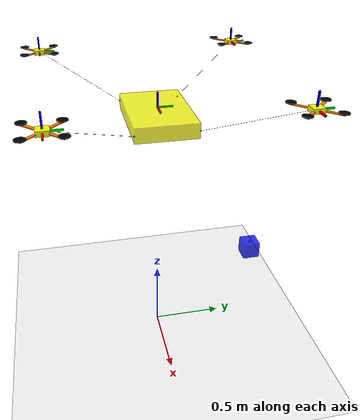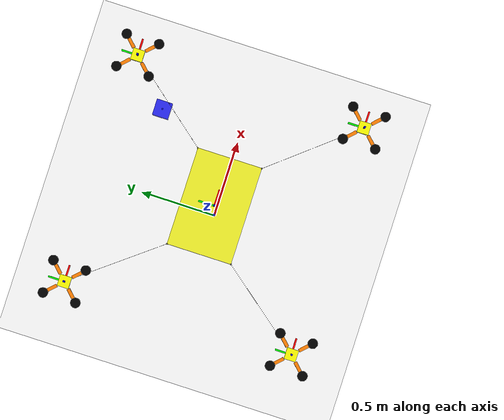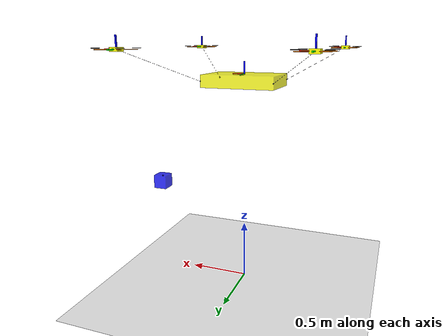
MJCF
<mujoco model="MuJoCo Model">
  <!--Compiler Options-->
  <compiler angle="radian"/>
  <option timestep="0.01" gravity="0 0 -9.81" density="1.225" viscosity="1.8e-05" integrator="RK4" jacobian="sparse">
    <flag energy="enable" contact="enable"/>
  </option>

<extension>
  <!-- Other plugins … (no configs on these if you don't need them) -->
  <plugin plugin="MujocoRosUtils::ClockPublisher"/>
  <plugin plugin="MujocoRosUtils::PosePublisher"/>
  <plugin plugin="MujocoRosUtils::ImagePublisher"/>
  <plugin plugin="MujocoRosUtils::ExternalForce"/>
  <plugin plugin="MujocoRosUtils::SensorPublisher"/>
  <plugin plugin="MujocoRosUtils::WrenchToActuators"/>
  <plugin plugin="MujocoRosUtils::OdometryPublisher"/>
</extension>

  <asset>
  <texture name="texchecker" type="2d" builtin="checker" width="512" height="512"
           rgb1="0.8 0.8 0.8" rgb2="0.2 0.2 0.2" />
  <material name="matchecker" texture="texchecker" texrepeat="4 4"
            reflectance="0.2" shininess="0.5" specular="0.3" />
  </asset>

  <worldbody>
    <light pos="0 0 1.5" dir="0 0 -1" directional="true"/>
    <geom name="floor" type="plane" size="20 20 0.1" material="matchecker"
      rgba="1 1 1 1" friction="1.0 0.005 0.0001" condim="3"/>

      <!--Quadrotor 0 -->
    <body name="drone_0" pos="-0.7 -0.7 2" euler="0 0 0">
      <joint name="drone_0" type="free" damping="0.001" armature="0" pos="0 0 0"/>

      <!-- Core: bright yellow for visibility -->
      <geom name="core" type="box" pos="0 0 0" quat="1. 0. 0. 0" size="0.035 0.035 0.015"
            rgba="1.0 1.0 0.0 1.0" mass=".84" friction="1.0 0.005 0.0001"/>

      <!-- Arms: bright orange -->
      <geom name="a00" type="box" pos=".071 0.071 0.0" size="0.05 0.01 0.0025"
            quat=".924 0.0 0.0 0.383" rgba="1.0 0.5 0.0 1.0" mass=".025"/>

      <geom name="a10" type="box" pos=".071 -0.071 0.0" size="0.05 0.01 0.0025"
            quat=".383 0.0 0.0 0.924" rgba="1.0 0.5 0.0 1.0" mass=".025"/>

      <geom name="a20" type="box" pos="-0.071 -0.071 0.0" size="0.05 0.01 0.0025"
            quat="-.383 0.0 0.0 0.924" rgba="1.0 0.5 0.0 1.0" mass=".025"/>

      <geom name="a30" type="box" pos="-.071 0.071 0.0" size="0.05 0.01 0.0025"
            quat=".924 0.0 0.0 -0.383" rgba="1.0 0.5 0.0 1.0" mass=".025"/>

      <!-- Thrusters: black for contrast -->
      <geom name="thruster00" type="cylinder" pos="0.1 0.1 0.01" size="0.03 0.0025"
            quat="1.0 0.0 0.0 0." rgba="0.0 0.0 0.0 1.0" mass=".015"/>
      <geom name="thruster10" type="cylinder" pos="0.1 -0.1 0.01" size="0.03 0.0025"
            quat="1.0 0.0 0.0 0." rgba="0.0 0.0 0.0 1.0" mass=".015"/>
      <geom name="thruster20" type="cylinder" pos="-0.1 -0.1 0.01" size="0.03 0.0025"
            quat="1.0 0.0 0.0 0." rgba="0.0 0.0 0.0 1.0" mass=".015"/>
      <geom name="thruster30" type="cylinder" pos="-0.1 0.1 0.01" size="0.03 0.0025"
            quat="1.0 0.0 0.0 0." rgba="0.0 0.0 0.0 1.0" mass=".015"/>

      <!-- Axes remain unchanged -->
      <site name="qcX" type="box" pos="0.05 0.0 0.0" size="0.05 0.005 0.005"
            quat="1.0 0.0 0.0 0." rgba="1 0 0 1"/>
      <site name="qcY" type="box" pos="0.0 0.05 0.0" size="0.05 0.005 0.005"
            quat="0.707 0.0 0.0 0.707" rgba="0 1 0 1"/>
      <site name="qcZ" type="box" pos="0.0 0.0 0.05" size="0.05 0.005 0.005"
            quat="-0.707 0.0 0.707 0." rgba="0 0 1 1"/>

      <!-- Actuator sites: bright cyan (unchanged) -->
      <site name="thrust" type="box" pos="0 0 0" size="0.035 0.035 0.015" quat="1.0 0.0 0.0 0." rgba="0 1 1 1"/>
      <site name="rateX" type="box" pos="0 0 0" quat="1. 0. 0. 0." size="0.035 0.035 0.015" rgba="0 1 1 1"/>
      <site name="rateY" type="box" pos="0 0 0" quat="1. 0. 0. 0." size="0.035 0.035 0.015" rgba="0 1 1 1"/>
      <site name="rateZ" type="box" pos="0 0 0" quat="1. 0. 0. 0." size="0.035 0.035 0.015" rgba="0 1 1 1"/>
      <site name="imu" pos="0 0 0"/>

      <site name="payload_point_drone_0" pos="0.0 0.0 -0.0"/>

      <camera name="camera_0" pos="0.035 0 -0.015" euler="0 0 -1.57"/>
    </body>

      <!--Quadrotor 1 -->
    <body name="drone_1" pos="-0.7 0.7 2" euler="0 0 0">
      <joint name="drone_1" type="free" damping="0.001" armature="0" pos="0 0 0"/>

      <!-- Core: bright yellow for visibility -->
      <geom name="core_1" type="box" pos="0 0 0" quat="1. 0. 0. 0" size="0.035 0.035 0.015"
            rgba="1.0 1.0 0.0 1.0" mass=".84" friction="1.0 0.005 0.0001"/>

      <!-- Arms: bright orange -->
      <geom name="a01" type="box" pos=".071 0.071 0.0" size="0.05 0.01 0.0025"
            quat=".924 0.0 0.0 0.383" rgba="1.0 0.5 0.0 1.0" mass=".025"/>

      <geom name="a11" type="box" pos=".071 -0.071 0.0" size="0.05 0.01 0.0025"
            quat=".383 0.0 0.0 0.924" rgba="1.0 0.5 0.0 1.0" mass=".025"/>

      <geom name="a21" type="box" pos="-0.071 -0.071 0.0" size="0.05 0.01 0.0025"
            quat="-.383 0.0 0.0 0.924" rgba="1.0 0.5 0.0 1.0" mass=".025"/>

      <geom name="a31" type="box" pos="-.071 0.071 0.0" size="0.05 0.01 0.0025"
            quat=".924 0.0 0.0 -0.383" rgba="1.0 0.5 0.0 1.0" mass=".025"/>

      <!-- Thrusters: black for contrast -->
      <geom name="thruster01" type="cylinder" pos="0.1 0.1 0.01" size="0.03 0.0025"
            quat="1.0 0.0 0.0 0." rgba="0.0 0.0 0.0 1.0" mass=".015"/>
      <geom name="thruster11" type="cylinder" pos="0.1 -0.1 0.01" size="0.03 0.0025"
            quat="1.0 0.0 0.0 0." rgba="0.0 0.0 0.0 1.0" mass=".015"/>
      <geom name="thruster21" type="cylinder" pos="-0.1 -0.1 0.01" size="0.03 0.0025"
            quat="1.0 0.0 0.0 0." rgba="0.0 0.0 0.0 1.0" mass=".015"/>
      <geom name="thruster31" type="cylinder" pos="-0.1 0.1 0.01" size="0.03 0.0025"
            quat="1.0 0.0 0.0 0." rgba="0.0 0.0 0.0 1.0" mass=".015"/>

      <!-- Axes remain unchanged -->
      <site name="qcX1" type="box" pos="0.05 0.0 0.0" size="0.05 0.005 0.005"
            quat="1.0 0.0 0.0 0." rgba="1 0 0 1"/>
      <site name="qcY1" type="box" pos="0.0 0.05 0.0" size="0.05 0.005 0.005"
            quat="0.707 0.0 0.0 0.707" rgba="0 1 0 1"/>
      <site name="qcZ1" type="box" pos="0.0 0.0 0.05" size="0.05 0.005 0.005"
            quat="-0.707 0.0 0.707 0." rgba="0 0 1 1"/>

      <!-- Actuator sites: bright cyan (unchanged) -->
      <site name="thrust1" type="box" pos="0 0 0" size="0.035 0.035 0.015" quat="1.0 0.0 0.0 0." rgba="0 1 1 1"/>
      <site name="rateX1" type="box" pos="0 0 0" quat="1. 0. 0. 0." size="0.035 0.035 0.015" rgba="0 1 1 1"/>
      <site name="rateY1" type="box" pos="0 0 0" quat="1. 0. 0. 0." size="0.035 0.035 0.015" rgba="0 1 1 1"/>
      <site name="rateZ1" type="box" pos="0 0 0" quat="1. 0. 0. 0." size="0.035 0.035 0.015" rgba="0 1 1 1"/>
      <site name="imu1" pos="0 0 0"/>

      <site name="payload_point_drone_1" pos="0.0 0.0 -0.0"/>

      <camera name="camera_1" pos="0.035 0 -0.015" euler="0 0 -1.57"/>
    </body>

     <!--Quadrotor 2 -->
    <body name="drone_2" pos="0.7 -0.7 2" euler="0 0 0">
      <joint name="drone_2" type="free" damping="0.001" armature="0" pos="0 0 0"/>

      <!-- Core: bright yellow for visibility -->
      <geom name="core_2" type="box" pos="0 0 0" quat="1. 0. 0. 0" size="0.035 0.035 0.015"
            rgba="1.0 1.0 0.0 1.0" mass=".84" friction="1.0 0.005 0.0001"/>

      <!-- Arms: bright orange -->
      <geom name="a02" type="box" pos=".071 0.071 0.0" size="0.05 0.01 0.0025"
            quat=".924 0.0 0.0 0.383" rgba="1.0 0.5 0.0 1.0" mass=".025"/>

      <geom name="a12" type="box" pos=".071 -0.071 0.0" size="0.05 0.01 0.0025"
            quat=".383 0.0 0.0 0.924" rgba="1.0 0.5 0.0 1.0" mass=".025"/>

      <geom name="a22" type="box" pos="-0.071 -0.071 0.0" size="0.05 0.01 0.0025"
            quat="-.383 0.0 0.0 0.924" rgba="1.0 0.5 0.0 1.0" mass=".025"/>

      <geom name="a32" type="box" pos="-.071 0.071 0.0" size="0.05 0.01 0.0025"
            quat=".924 0.0 0.0 -0.383" rgba="1.0 0.5 0.0 1.0" mass=".025"/>

      <!-- Thrusters: black for contrast -->
      <geom name="thruster02" type="cylinder" pos="0.1 0.1 0.01" size="0.03 0.0025"
            quat="1.0 0.0 0.0 0." rgba="0.0 0.0 0.0 1.0" mass=".015"/>
      <geom name="thruster12" type="cylinder" pos="0.1 -0.1 0.01" size="0.03 0.0025"
            quat="1.0 0.0 0.0 0." rgba="0.0 0.0 0.0 1.0" mass=".015"/>
      <geom name="thruster22" type="cylinder" pos="-0.1 -0.1 0.01" size="0.03 0.0025"
            quat="1.0 0.0 0.0 0." rgba="0.0 0.0 0.0 1.0" mass=".015"/>
      <geom name="thruster32" type="cylinder" pos="-0.1 0.1 0.01" size="0.03 0.0025"
            quat="1.0 0.0 0.0 0." rgba="0.0 0.0 0.0 1.0" mass=".015"/>

      <!-- Axes remain unchanged -->
      <site name="qcX2" type="box" pos="0.05 0.0 0.0" size="0.05 0.005 0.005"
            quat="1.0 0.0 0.0 0." rgba="1 0 0 1"/>
      <site name="qcY2" type="box" pos="0.0 0.05 0.0" size="0.05 0.005 0.005"
            quat="0.707 0.0 0.0 0.707" rgba="0 1 0 1"/>
      <site name="qcZ2" type="box" pos="0.0 0.0 0.05" size="0.05 0.005 0.005"
            quat="-0.707 0.0 0.707 0." rgba="0 0 1 1"/>

      <!-- Actuator sites: bright cyan (unchanged) -->
      <site name="thrust2" type="box" pos="0 0 0" size="0.035 0.035 0.015" quat="1.0 0.0 0.0 0." rgba="0 1 1 1"/>
      <site name="rateX2" type="box" pos="0 0 0" quat="1. 0. 0. 0." size="0.035 0.035 0.015" rgba="0 1 1 1"/>
      <site name="rateY2" type="box" pos="0 0 0" quat="1. 0. 0. 0." size="0.035 0.035 0.015" rgba="0 1 1 1"/>
      <site name="rateZ2" type="box" pos="0 0 0" quat="1. 0. 0. 0." size="0.035 0.035 0.015" rgba="0 1 1 1"/>
      <site name="imu2" pos="0 0 0"/>

      <site name="payload_point_drone_2" pos="0.0 0.0 -0.0"/>
    </body>

     <!--Quadrotor 3 -->
    <body name="drone_3" pos="0.7 0.7 2" euler="0 0 0">
      <joint name="drone_3" type="free" damping="0.001" armature="0" pos="0 0 0"/>

      <!-- Core: bright yellow for visibility -->
      <geom name="core_3" type="box" pos="0 0 0" quat="1. 0. 0. 0" size="0.035 0.035 0.015"
            rgba="1.0 1.0 0.0 1.0" mass=".84" friction="1.0 0.005 0.0001"/>

      <!-- Arms: bright orange -->
      <geom name="a03" type="box" pos=".071 0.071 0.0" size="0.05 0.01 0.0025"
            quat=".924 0.0 0.0 0.383" rgba="1.0 0.5 0.0 1.0" mass=".025"/>

      <geom name="a13" type="box" pos=".071 -0.071 0.0" size="0.05 0.01 0.0025"
            quat=".383 0.0 0.0 0.924" rgba="1.0 0.5 0.0 1.0" mass=".025"/>

      <geom name="a23" type="box" pos="-0.071 -0.071 0.0" size="0.05 0.01 0.0025"
            quat="-.383 0.0 0.0 0.924" rgba="1.0 0.5 0.0 1.0" mass=".025"/>

      <geom name="a33" type="box" pos="-.071 0.071 0.0" size="0.05 0.01 0.0025"
            quat=".924 0.0 0.0 -0.383" rgba="1.0 0.5 0.0 1.0" mass=".025"/>

      <!-- Thrusters: black for contrast -->
      <geom name="thruster03" type="cylinder" pos="0.1 0.1 0.01" size="0.03 0.0025"
            quat="1.0 0.0 0.0 0." rgba="0.0 0.0 0.0 1.0" mass=".015"/>
      <geom name="thruster13" type="cylinder" pos="0.1 -0.1 0.01" size="0.03 0.0025"
            quat="1.0 0.0 0.0 0." rgba="0.0 0.0 0.0 1.0" mass=".015"/>
      <geom name="thruster23" type="cylinder" pos="-0.1 -0.1 0.01" size="0.03 0.0025"
            quat="1.0 0.0 0.0 0." rgba="0.0 0.0 0.0 1.0" mass=".015"/>
      <geom name="thruster33" type="cylinder" pos="-0.1 0.1 0.01" size="0.03 0.0025"
            quat="1.0 0.0 0.0 0." rgba="0.0 0.0 0.0 1.0" mass=".015"/>

      <!-- Axes remain unchanged -->
      <site name="qcX3" type="box" pos="0.05 0.0 0.0" size="0.05 0.005 0.005"
            quat="1.0 0.0 0.0 0." rgba="1 0 0 1"/>
      <site name="qcY3" type="box" pos="0.0 0.05 0.0" size="0.05 0.005 0.005"
            quat="0.707 0.0 0.0 0.707" rgba="0 1 0 1"/>
      <site name="qcZ3" type="box" pos="0.0 0.0 0.05" size="0.05 0.005 0.005"
            quat="-0.707 0.0 0.707 0." rgba="0 0 1 1"/>

      <!-- Actuator sites: bright cyan (unchanged) -->
      <site name="thrust3" type="box" pos="0 0 0" size="0.035 0.035 0.015" quat="1.0 0.0 0.0 0." rgba="0 1 1 1"/>
      <site name="rateX3" type="box" pos="0 0 0" quat="1. 0. 0. 0." size="0.035 0.035 0.015" rgba="0 1 1 1"/>
      <site name="rateY3" type="box" pos="0 0 0" quat="1. 0. 0. 0." size="0.035 0.035 0.015" rgba="0 1 1 1"/>
      <site name="rateZ3" type="box" pos="0 0 0" quat="1. 0. 0. 0." size="0.035 0.035 0.015" rgba="0 1 1 1"/>
      <site name="imu3" pos="0 0 0"/>

      <site name="payload_point_drone_3" pos="0.0 0.0 -0.0"/>
    </body>

    <!-- Payloy only in xyz axis -->
    <body name="payload_ball" pos="0.5 0.5 1.">
      <joint name="payload_ball" pos="0 0 0" type="free" damping="0.001"/>
      <geom name="payload_ball"
        type="box"
        size="0.05 0.05 0.05"
        rgba="0 0 1 0.8"
        mass="0.17"
        friction="1.0 0.005 0.0001"/>
      <site name="payload_point" pos="0.0 0.0 0.04"/>
      <!--  Representation of the body frame   -->
      </body>

    <body name="payload" pos="0.0 0.0 1.75">
      <joint name="payload" pos="0 0 0" type="free" damping="0.001"/>
      <geom name="payload"
        type="box"
        size="0.3 0.2 0.05"
        rgba="1 1 0 0.8"
        mass="1.5"
        friction="1.0 0.005 0.0001"/>

      <!-- optional: visualize body axes (uncomment if you want) -->
      <site name="load_X" type="box" pos="0.05 0.0 0.05" size="0.05 0.005 0.005" quat="1 0 0 0" rgba="1 0 0 1"/>
      <site name="load_Y" type="box" pos="0.0 0.05 0.05" size="0.05 0.005 0.005" quat="0.707 0 0 0.707" rgba="0 1 0 1"/>
      <site name="load_Z" type="box" pos="0.0 0.0 0.1" size="0.05 0.005 0.005" quat="-0.707 0 0.707 0" rgba="0 0 1 1"/>

      <site name="payload_point_3" pos="0.3 0.2 0.0"/>
      <site name="payload_point_0" pos="-0.3 -0.2 0.0"/>
      <site name="payload_point_1" pos="-0.3 0.2 0.0"/>
      <site name="payload_point_2" pos="0.3 -0.2 0.0"/>
</body>
  </worldbody>

  <actuator>
    <motor ctrllimited="true" ctrlrange="0 40.0" gear="0 0. 1. 0. 0. 0." site="thrust" name="body_thrust"/>
    <motor ctrllimited="true" ctrlrange="-0.5 0.5" gear="0. 0. 0. 1. 0. 0." site="rateX" name="x_moment"/>
    <motor ctrllimited="true" ctrlrange="-0.5 0.5" gear="0. 0. 0. 0. 1. 0." site="rateY" name="y_moment"/>
    <motor ctrllimited="true" ctrlrange="-0.5 0.5" gear="0. 0. 0. 0. 0. 1." site="rateZ" name="z_moment"/>
<plugin name="SO3_0" plugin="MujocoRosUtils::WrenchToActuators" joint="drone_0">
    <config key="topic_name"   value="/drone_0/position_cmd"/>
    <config key="actuator_fz"  value="body_thrust"/>
    <config key="actuator_tx"  value="x_moment"/>
    <config key="actuator_ty"  value="y_moment"/>
    <config key="actuator_tz"  value="z_moment"/>
    <config key="control_hz"   value="500"/>
    <config key="body_name"    value="drone_0"/>
  </plugin>
</actuator>

  <actuator>
    <motor ctrllimited="true" ctrlrange="0 40.0" gear="0 0. 1. 0. 0. 0." site="thrust1" name="body_thrust1"/>
    <motor ctrllimited="true" ctrlrange="-0.5 0.5" gear="0. 0. 0. 1. 0. 0." site="rateX1" name="x_moment1"/>
    <motor ctrllimited="true" ctrlrange="-0.5 0.5" gear="0. 0. 0. 0. 1. 0." site="rateY1" name="y_moment1"/>
    <motor ctrllimited="true" ctrlrange="-0.5 0.5" gear="0. 0. 0. 0. 0. 1." site="rateZ1" name="z_moment1"/>
<plugin name="SO3_1" plugin="MujocoRosUtils::WrenchToActuators" joint="drone_1">
    <config key="topic_name"   value="/drone_1/position_cmd"/>
    <config key="actuator_fz"  value="body_thrust1"/>
    <config key="actuator_tx"  value="x_moment1"/>
    <config key="actuator_ty"  value="y_moment1"/>
    <config key="actuator_tz"  value="z_moment1"/>
    <config key="control_hz"   value="500"/>
    <config key="body_name"    value="drone_1"/>
  </plugin>
</actuator>

<actuator>
    <motor ctrllimited="true" ctrlrange="0 40.0" gear="0 0. 1. 0. 0. 0." site="thrust2" name="body_thrust2"/>
    <motor ctrllimited="true" ctrlrange="-0.5 0.5" gear="0. 0. 0. 1. 0. 0." site="rateX2" name="x_moment2"/>
    <motor ctrllimited="true" ctrlrange="-0.5 0.5" gear="0. 0. 0. 0. 1. 0." site="rateY2" name="y_moment2"/>
    <motor ctrllimited="true" ctrlrange="-0.5 0.5" gear="0. 0. 0. 0. 0. 1." site="rateZ2" name="z_moment2"/>
<plugin name="SO3_2" plugin="MujocoRosUtils::WrenchToActuators" joint="drone_2">
    <config key="topic_name"   value="/drone_2/position_cmd"/>
    <config key="actuator_fz"  value="body_thrust2"/>
    <config key="actuator_tx"  value="x_moment2"/>
    <config key="actuator_ty"  value="y_moment2"/>
    <config key="actuator_tz"  value="z_moment2"/>
    <config key="control_hz"   value="500"/>
    <config key="body_name"    value="drone_2"/>
  </plugin>
</actuator>

<actuator>
    <motor ctrllimited="true" ctrlrange="0 40.0" gear="0 0. 1. 0. 0. 0." site="thrust3" name="body_thrust3"/>
    <motor ctrllimited="true" ctrlrange="-0.5 0.5" gear="0. 0. 0. 1. 0. 0." site="rateX3" name="x_moment3"/>
    <motor ctrllimited="true" ctrlrange="-0.5 0.5" gear="0. 0. 0. 0. 1. 0." site="rateY3" name="y_moment3"/>
    <motor ctrllimited="true" ctrlrange="-0.5 0.5" gear="0. 0. 0. 0. 0. 1." site="rateZ3" name="z_moment3"/>
<plugin name="SO3_3" plugin="MujocoRosUtils::WrenchToActuators" joint="drone_3">
    <config key="topic_name"   value="/drone_3/position_cmd"/>
    <config key="actuator_fz"  value="body_thrust3"/>
    <config key="actuator_tx"  value="x_moment3"/>
    <config key="actuator_ty"  value="y_moment3"/>
    <config key="actuator_tz"  value="z_moment3"/>
    <config key="control_hz"   value="500"/>
    <config key="body_name"    value="drone_3"/>
  </plugin>
</actuator>

<tendon>
        <spatial name="rope0" limited="true" range="0 1" width=".0005">
            <site site="payload_point_drone_0"/>
            <site site="payload_point_0"/>
        </spatial>

        <spatial name="rope1" limited="true" range="0 1" width=".0005">
            <site site="payload_point_drone_1"/>
            <site site="payload_point_1"/>
        </spatial>

        <spatial name="rope2" limited="true" range="0 1" width=".0005">
            <site site="payload_point_drone_2"/>
            <site site="payload_point_2"/>
        </spatial>

        <spatial name="rope3" limited="true" range="0 1" width=".0005">
            <site site="payload_point_drone_3"/>
            <site site="payload_point_3"/>
        </spatial>
</tendon>
  <sensor>
    <plugin name="odom_publisher_drone_0" plugin="MujocoRosUtils::OdometryPublisher" objtype="xbody" objname="drone_0">
      <config key="frame_id" value="world"/>
      <config key="odom_topic_name" value="drone_0/odom"/>
      <config key="publish_rate" value="100"/>
      <config key="child_frame_id" value="drone_0"/>
    </plugin>

    <plugin name="odom_publisher_drone_1" plugin="MujocoRosUtils::OdometryPublisher" objtype="xbody" objname="drone_1">
      <config key="frame_id" value="world"/>
      <config key="odom_topic_name" value="drone_1/odom"/>
      <config key="publish_rate" value="100"/>
      <config key="child_frame_id" value="drone_1"/>
    </plugin>

    <plugin name="odom_publisher_drone_2" plugin="MujocoRosUtils::OdometryPublisher" objtype="xbody" objname="drone_2">
      <config key="frame_id" value="world"/>
      <config key="odom_topic_name" value="drone_2/odom"/>
      <config key="publish_rate" value="100"/>
      <config key="child_frame_id" value="drone_2"/>
    </plugin>

    <plugin name="odom_publisher_drone_3" plugin="MujocoRosUtils::OdometryPublisher" objtype="xbody" objname="drone_3">
      <config key="frame_id" value="world"/>
      <config key="odom_topic_name" value="drone_3/odom"/>
      <config key="publish_rate" value="100"/>
      <config key="child_frame_id" value="drone_3"/>
    </plugin>

    <plugin name="odom_payload" plugin="MujocoRosUtils::OdometryPublisher" objtype="xbody" objname="payload">
      <config key="frame_id" value="world"/>
      <config key="odom_topic_name" value="payload/odom"/>
      <config key="publish_rate" value="100"/>
      <config key="child_frame_id" value="payload"/>
    </plugin>

    <plugin name="image_publisher_0" plugin="MujocoRosUtils::ImagePublisher" objtype="camera" objname="camera_0">
      <config key="frame_id" value="camera_0"/>
      <config key="color_topic_name" value="/drone_0/image/color"/>
      <config key="depth_topic_name" value="/drone_0/image/depth"/>
      <config key="info_topic_name" value="/drone_0/image/camera_info"/>
      <config key="height" value="240"/>
      <config key="width" value="320"/>
      <config key="publish_rate" value="30"/>
    </plugin>
  </sensor>
</mujoco>
